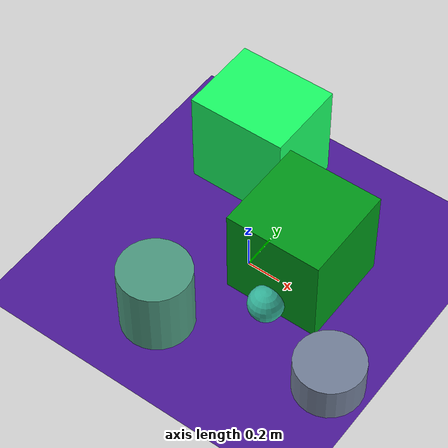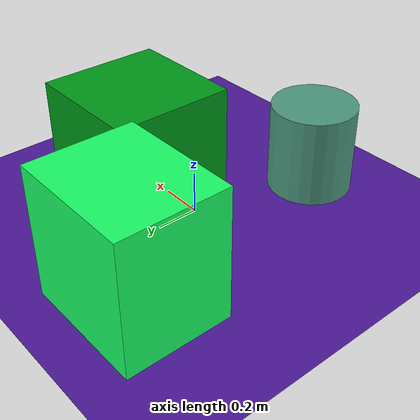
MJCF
<mujoco>
   <asset>
<texture type="skybox" builtin="gradient" rgb1="0.5 0.3 0.2" rgb2="0.9 0.1 0.4" width="256" height="256"/>
<texture name="flat_0" builtin="flat" rgb1="0.3 0.6 0.5" rgb2="0.3 0.6 0.5"  width="200" height="200"/>
<texture name="flat_1" builtin="flat" rgb1="0.0 0.6 0.1" rgb2="0.0 0.6 0.1"  width="200" height="200"/>
<texture name="flat_2" builtin="flat" rgb1="0.1 1.0 0.4" rgb2="0.1 1.0 0.4"  width="200" height="200"/>
<texture name="flat_3" builtin="flat" rgb1="0.2 0.7 0.6" rgb2="0.2 0.7 0.6"  width="200" height="200"/>
<texture name="gradient_4" builtin="gradient" rgb1="0.7 0.3 0.5" rgb2="0.2 0.7 0.7" width="200" height="200"/><material name="flat_0_mat" reflectance="0" texture="flat_0" texuniform="true"/>
<material name="flat_1_mat" reflectance="0" texture="flat_1" texuniform="true"/>
<material name="flat_2_mat" reflectance="0" texture="flat_2" texuniform="true"/>
<material name="flat_3_mat" reflectance="0" texture="flat_3" texuniform="true"/>
<material name="gradient_4_mat" reflectance="0" texture="gradient_4" texuniform="true"/>
   </asset>

   <worldbody>
      <light diffuse=".9 .9 .9" pos="0 0 3" dir="0 0 -1"/>
     <geom type="plane" size="1 1 0.1" rgba="0.3 0.1 0.6 1"/>
<geom type="cylinder" pos="-0.17 -0.57 0.21" size="0.2 0.21 0.21" material="flat_0_mat" />
<geom type="box" pos="0.27 0.1 0.28" size="0.28 0.28 0.28" material="flat_1_mat" />
<geom type="box" pos="-0.33 0.57 0.3" size="0.29 0.24 0.3" material="flat_2_mat" />
<geom type="sphere" pos="0.27 -0.22 0.1" size="0.1 0.1 0.1" material="flat_3_mat" />
<geom type="cylinder" pos="0.78 -0.39 0.11" size="0.19 0.11 0.11" material="gradient_4_mat" /><camera euler="60 0 180" fovy="60" name="camera_a" pos="0 -1.5 1"></camera>   </worldbody>
</mujoco>
